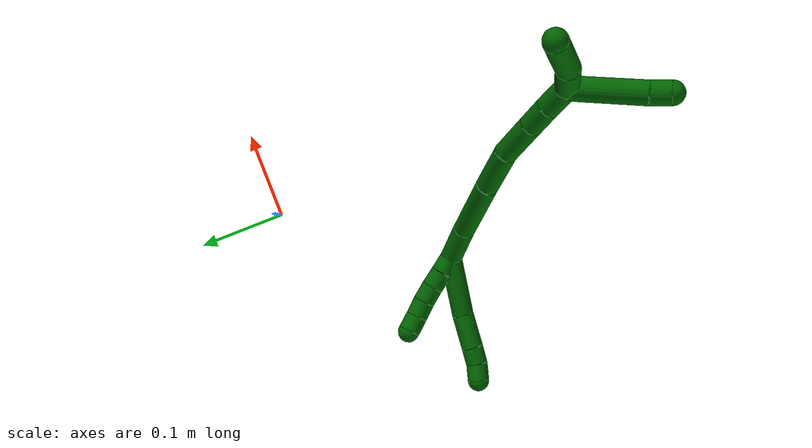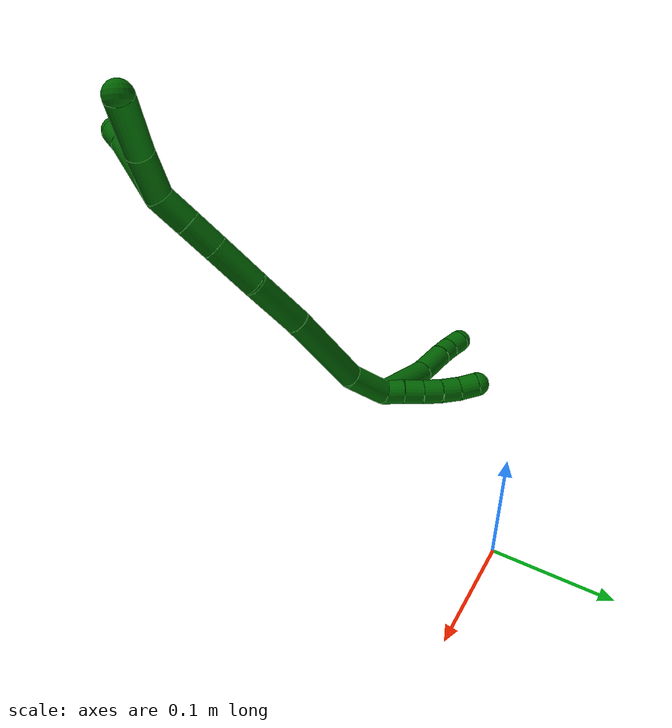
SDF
<sdf version="1.7">
 <world name="default">
  <model name="6">
   <static>0</static>
   <link name="6">
    <collision name="collision-cylinder-e_1_2_8">
     <pose>-0.032382 0.012296 0.002668 -1.35716 -1.20019 1.00836</pose>
     <geometry><cylinder><radius>0.0125</radius><length>0.06948</length></cylinder></geometry>
     <surface>
      <friction><ode><mu>1.16</mu><mu2>1.16</mu2><slip1>0</slip1><slip2>0</slip2></ode></friction>
      <contact><ode><kp>1e+06</kp><kd>1</kd><max_vel>0</max_vel><min_depth>0.001</min_depth></ode></contact>
     </surface>
    </collision>
    <visual name="visual-cylinder-e_1_2_8">
     <pose>-0.032382 0.012296 0.002668 -1.35716 -1.20019 1.00836</pose>
     <geometry><cylinder><radius>0.0125</radius><length>0.06948</length></cylinder></geometry>
     <material><ambient>0 0.392157 0.003922 1</ambient></material>
    </visual>
    <collision name="collision-cylinder-e_2_8_9">
     <pose>-0.08309 0.031248 0.010634 -0.898435 -1.13621 0.597046</pose>
     <geometry><cylinder><radius>0.0125</radius><length>0.04041</length></cylinder></geometry>
     <surface>
      <friction><ode><mu>1.16</mu><mu2>1.16</mu2><slip1>0</slip1><slip2>0</slip2></ode></friction>
      <contact><ode><kp>1e+06</kp><kd>1</kd><max_vel>0</max_vel><min_depth>0.001</min_depth></ode></contact>
     </surface>
    </collision>
    <visual name="visual-cylinder-e_2_8_9">
     <pose>-0.08309 0.031248 0.010634 -0.898435 -1.13621 0.597046</pose>
     <geometry><cylinder><radius>0.0125</radius><length>0.04041</length></cylinder></geometry>
     <material><ambient>0 0.392157 0.003922 1</ambient></material>
    </visual>
    <collision name="collision-cylinder-e_3_9_10">
     <pose>-0.110658 0.041187 0.01805 -0.997867 -1.17073 0.693246</pose>
     <geometry><cylinder><radius>0.0125</radius><length>0.020065</length></cylinder></geometry>
     <surface>
      <friction><ode><mu>1.16</mu><mu2>1.16</mu2><slip1>0</slip1><slip2>0</slip2></ode></friction>
      <contact><ode><kp>1e+06</kp><kd>1</kd><max_vel>0</max_vel><min_depth>0.001</min_depth></ode></contact>
     </surface>
    </collision>
    <visual name="visual-cylinder-e_3_9_10">
     <pose>-0.110658 0.041187 0.01805 -0.997867 -1.17073 0.693246</pose>
     <geometry><cylinder><radius>0.0125</radius><length>0.020065</length></cylinder></geometry>
     <material><ambient>0 0.392157 0.003922 1</ambient></material>
    </visual>
    <collision name="collision-cylinder-e_4_10_6">
     <pose>-0.128069 0.049566 0.022944 -1.07214 -0.953338 0.595335</pose>
     <geometry><cylinder><radius>0.0125</radius><length>0.020044</length></cylinder></geometry>
     <surface>
      <friction><ode><mu>1.16</mu><mu2>1.16</mu2><slip1>0</slip1><slip2>0</slip2></ode></friction>
      <contact><ode><kp>1e+06</kp><kd>1</kd><max_vel>0</max_vel><min_depth>0.001</min_depth></ode></contact>
     </surface>
    </collision>
    <visual name="visual-cylinder-e_4_10_6">
     <pose>-0.128069 0.049566 0.022944 -1.07214 -0.953338 0.595335</pose>
     <geometry><cylinder><radius>0.0125</radius><length>0.020044</length></cylinder></geometry>
     <material><ambient>0 0.392157 0.003922 1</ambient></material>
    </visual>
    <collision name="collision-cylinder-e_1_2_11">
     <pose>-0.004279 0.009023 -0.000527 -1.62919 -0.442218 0.46789</pose>
     <geometry><cylinder><radius>0.0125</radius><length>0.02</length></cylinder></geometry>
     <surface>
      <friction><ode><mu>1.16</mu><mu2>1.16</mu2><slip1>0</slip1><slip2>0</slip2></ode></friction>
      <contact><ode><kp>1e+06</kp><kd>1</kd><max_vel>0</max_vel><min_depth>0.001</min_depth></ode></contact>
     </surface>
    </collision>
    <visual name="visual-cylinder-e_1_2_11">
     <pose>-0.004279 0.009023 -0.000527 -1.62919 -0.442218 0.46789</pose>
     <geometry><cylinder><radius>0.0125</radius><length>0.02</length></cylinder></geometry>
     <material><ambient>0 0.392157 0.003922 1</ambient></material>
    </visual>
    <collision name="collision-cylinder-e_2_11_12">
     <pose>-0.012861 0.026978 -0.002358 -1.71568 -0.444764 0.511561</pose>
     <geometry><cylinder><radius>0.0125</radius><length>0.02</length></cylinder></geometry>
     <surface>
      <friction><ode><mu>1.16</mu><mu2>1.16</mu2><slip1>0</slip1><slip2>0</slip2></ode></friction>
      <contact><ode><kp>1e+06</kp><kd>1</kd><max_vel>0</max_vel><min_depth>0.001</min_depth></ode></contact>
     </surface>
    </collision>
    <visual name="visual-cylinder-e_2_11_12">
     <pose>-0.012861 0.026978 -0.002358 -1.71568 -0.444764 0.511561</pose>
     <geometry><cylinder><radius>0.0125</radius><length>0.02</length></cylinder></geometry>
     <material><ambient>0 0.392157 0.003922 1</ambient></material>
    </visual>
    <collision name="collision-cylinder-e_3_12_13">
     <pose>-0.021786 0.044753 -0.004324 -1.64555 -0.480525 0.516275</pose>
     <geometry><cylinder><radius>0.0125</radius><length>0.02</length></cylinder></geometry>
     <surface>
      <friction><ode><mu>1.16</mu><mu2>1.16</mu2><slip1>0</slip1><slip2>0</slip2></ode></friction>
      <contact><ode><kp>1e+06</kp><kd>1</kd><max_vel>0</max_vel><min_depth>0.001</min_depth></ode></contact>
     </surface>
    </collision>
    <visual name="visual-cylinder-e_3_12_13">
     <pose>-0.021786 0.044753 -0.004324 -1.64555 -0.480525 0.516275</pose>
     <geometry><cylinder><radius>0.0125</radius><length>0.02</length></cylinder></geometry>
     <material><ambient>0 0.392157 0.003922 1</ambient></material>
    </visual>
    <collision name="collision-cylinder-e_4_13_14">
     <pose>-0.031469 0.062221 -0.004908 -1.56172 -0.530616 0.526042</pose>
     <geometry><cylinder><radius>0.0125</radius><length>0.02</length></cylinder></geometry>
     <surface>
      <friction><ode><mu>1.16</mu><mu2>1.16</mu2><slip1>0</slip1><slip2>0</slip2></ode></friction>
      <contact><ode><kp>1e+06</kp><kd>1</kd><max_vel>0</max_vel><min_depth>0.001</min_depth></ode></contact>
     </surface>
    </collision>
    <visual name="visual-cylinder-e_4_13_14">
     <pose>-0.031469 0.062221 -0.004908 -1.56172 -0.530616 0.526042</pose>
     <geometry><cylinder><radius>0.0125</radius><length>0.02</length></cylinder></geometry>
     <material><ambient>0 0.392157 0.003922 1</ambient></material>
    </visual>
    <collision name="collision-cylinder-e_5_14_5">
     <pose>-0.040599 0.07984 -0.003236 -1.39548 -0.419102 0.352916</pose>
     <geometry><cylinder><radius>0.0125</radius><length>0.02</length></cylinder></geometry>
     <surface>
      <friction><ode><mu>1.16</mu><mu2>1.16</mu2><slip1>0</slip1><slip2>0</slip2></ode></friction>
      <contact><ode><kp>1e+06</kp><kd>1</kd><max_vel>0</max_vel><min_depth>0.001</min_depth></ode></contact>
     </surface>
    </collision>
    <visual name="visual-cylinder-e_5_14_5">
     <pose>-0.040599 0.07984 -0.003236 -1.39548 -0.419102 0.352916</pose>
     <geometry><cylinder><radius>0.0125</radius><length>0.02</length></cylinder></geometry>
     <material><ambient>0 0.392157 0.003922 1</ambient></material>
    </visual>
    <collision name="collision-cylinder-e_1_2_15">
     <pose>0.014149 -0.012551 0.012019 0.807025 0.683356 0.30136</pose>
     <geometry><cylinder><radius>0.0125</radius><length>0.044819</length></cylinder></geometry>
     <surface>
      <friction><ode><mu>1.16</mu><mu2>1.16</mu2><slip1>0</slip1><slip2>0</slip2></ode></friction>
      <contact><ode><kp>1e+06</kp><kd>1</kd><max_vel>0</max_vel><min_depth>0.001</min_depth></ode></contact>
     </surface>
    </collision>
    <visual name="visual-cylinder-e_1_2_15">
     <pose>0.014149 -0.012551 0.012019 0.807025 0.683356 0.30136</pose>
     <geometry><cylinder><radius>0.0125</radius><length>0.044819</length></cylinder></geometry>
     <material><ambient>0 0.392157 0.003922 1</ambient></material>
    </visual>
    <collision name="collision-cylinder-e_2_15_16">
     <pose>0.053517 -0.040694 0.056557 0.447113 0.610249 0.142972</pose>
     <geometry><cylinder><radius>0.0125</radius><length>0.088013</length></cylinder></geometry>
     <surface>
      <friction><ode><mu>1.16</mu><mu2>1.16</mu2><slip1>0</slip1><slip2>0</slip2></ode></friction>
      <contact><ode><kp>1e+06</kp><kd>1</kd><max_vel>0</max_vel><min_depth>0.001</min_depth></ode></contact>
     </surface>
    </collision>
    <visual name="visual-cylinder-e_2_15_16">
     <pose>0.053517 -0.040694 0.056557 0.447113 0.610249 0.142972</pose>
     <geometry><cylinder><radius>0.0125</radius><length>0.088013</length></cylinder></geometry>
     <material><ambient>0 0.392157 0.003922 1</ambient></material>
    </visual>
    <collision name="collision-cylinder-e_3_16_17">
     <pose>0.094829 -0.068112 0.109113 0.533144 0.60512 0.170064</pose>
     <geometry><cylinder><radius>0.0125</radius><length>0.056581</length></cylinder></geometry>
     <surface>
      <friction><ode><mu>1.16</mu><mu2>1.16</mu2><slip1>0</slip1><slip2>0</slip2></ode></friction>
      <contact><ode><kp>1e+06</kp><kd>1</kd><max_vel>0</max_vel><min_depth>0.001</min_depth></ode></contact>
     </surface>
    </collision>
    <visual name="visual-cylinder-e_3_16_17">
     <pose>0.094829 -0.068112 0.109113 0.533144 0.60512 0.170064</pose>
     <geometry><cylinder><radius>0.0125</radius><length>0.056581</length></cylinder></geometry>
     <material><ambient>0 0.392157 0.003922 1</ambient></material>
    </visual>
    <collision name="collision-cylinder-e_4_17_18">
     <pose>0.121082 -0.092588 0.146917 0.618815 0.43592 0.141366</pose>
     <geometry><cylinder><radius>0.0125</radius><length>0.048121</length></cylinder></geometry>
     <surface>
      <friction><ode><mu>1.16</mu><mu2>1.16</mu2><slip1>0</slip1><slip2>0</slip2></ode></friction>
      <contact><ode><kp>1e+06</kp><kd>1</kd><max_vel>0</max_vel><min_depth>0.001</min_depth></ode></contact>
     </surface>
    </collision>
    <visual name="visual-cylinder-e_4_17_18">
     <pose>0.121082 -0.092588 0.146917 0.618815 0.43592 0.141366</pose>
     <geometry><cylinder><radius>0.0125</radius><length>0.048121</length></cylinder></geometry>
     <material><ambient>0 0.392157 0.003922 1</ambient></material>
    </visual>
    <collision name="collision-cylinder-e_5_18_19">
     <pose>0.137657 -0.113382 0.175945 0.625987 0.432466 0.141944</pose>
     <geometry><cylinder><radius>0.0125</radius><length>0.030613</length></cylinder></geometry>
     <surface>
      <friction><ode><mu>1.16</mu><mu2>1.16</mu2><slip1>0</slip1><slip2>0</slip2></ode></friction>
      <contact><ode><kp>1e+06</kp><kd>1</kd><max_vel>0</max_vel><min_depth>0.001</min_depth></ode></contact>
     </surface>
    </collision>
    <visual name="visual-cylinder-e_5_18_19">
     <pose>0.137657 -0.113382 0.175945 0.625987 0.432466 0.141944</pose>
     <geometry><cylinder><radius>0.0125</radius><length>0.030613</length></cylinder></geometry>
     <material><ambient>0 0.392157 0.003922 1</ambient></material>
    </visual>
    <collision name="collision-cylinder-e_6_19_1">
     <pose>0.150355 -0.130306 0.198915 0.643504 0.405565 0.136859</pose>
     <geometry><cylinder><radius>0.0125</radius><length>0.031854</length></cylinder></geometry>
     <surface>
      <friction><ode><mu>1.16</mu><mu2>1.16</mu2><slip1>0</slip1><slip2>0</slip2></ode></friction>
      <contact><ode><kp>1e+06</kp><kd>1</kd><max_vel>0</max_vel><min_depth>0.001</min_depth></ode></contact>
     </surface>
    </collision>
    <visual name="visual-cylinder-e_6_19_1">
     <pose>0.150355 -0.130306 0.198915 0.643504 0.405565 0.136859</pose>
     <geometry><cylinder><radius>0.0125</radius><length>0.031854</length></cylinder></geometry>
     <material><ambient>0 0.392157 0.003922 1</ambient></material>
    </visual>
    <collision name="collision-cylinder-e_1_1_20">
     <pose>0.138978 -0.164559 0.235651 0.7942 -0.459298 -0.195455</pose>
     <geometry><cylinder><radius>0.0125</radius><length>0.079678</length></cylinder></geometry>
     <surface>
      <friction><ode><mu>1.16</mu><mu2>1.16</mu2><slip1>0</slip1><slip2>0</slip2></ode></friction>
      <contact><ode><kp>1e+06</kp><kd>1</kd><max_vel>0</max_vel><min_depth>0.001</min_depth></ode></contact>
     </surface>
    </collision>
    <visual name="visual-cylinder-e_1_1_20">
     <pose>0.138978 -0.164559 0.235651 0.7942 -0.459298 -0.195455</pose>
     <geometry><cylinder><radius>0.0125</radius><length>0.079678</length></cylinder></geometry>
     <material><ambient>0 0.392157 0.003922 1</ambient></material>
    </visual>
    <collision name="collision-cylinder-e_2_20_4">
     <pose>0.11708 -0.197276 0.266407 0.901701 -0.430034 -0.210667</pose>
     <geometry><cylinder><radius>0.0125</radius><length>0.020322</length></cylinder></geometry>
     <surface>
      <friction><ode><mu>1.16</mu><mu2>1.16</mu2><slip1>0</slip1><slip2>0</slip2></ode></friction>
      <contact><ode><kp>1e+06</kp><kd>1</kd><max_vel>0</max_vel><min_depth>0.001</min_depth></ode></contact>
     </surface>
    </collision>
    <visual name="visual-cylinder-e_2_20_4">
     <pose>0.11708 -0.197276 0.266407 0.901701 -0.430034 -0.210667</pose>
     <geometry><cylinder><radius>0.0125</radius><length>0.020322</length></cylinder></geometry>
     <material><ambient>0 0.392157 0.003922 1</ambient></material>
    </visual>
    <collision name="collision-cylinder-e_1_1_21">
     <pose>0.169848 -0.137127 0.228158 -0.111299 0.642631 -0.03708</pose>
     <geometry><cylinder><radius>0.0125</radius><length>0.044081</length></cylinder></geometry>
     <surface>
      <friction><ode><mu>1.16</mu><mu2>1.16</mu2><slip1>0</slip1><slip2>0</slip2></ode></friction>
      <contact><ode><kp>1e+06</kp><kd>1</kd><max_vel>0</max_vel><min_depth>0.001</min_depth></ode></contact>
     </surface>
    </collision>
    <visual name="visual-cylinder-e_1_1_21">
     <pose>0.169848 -0.137127 0.228158 -0.111299 0.642631 -0.03708</pose>
     <geometry><cylinder><radius>0.0125</radius><length>0.044081</length></cylinder></geometry>
     <material><ambient>0 0.392157 0.003922 1</ambient></material>
    </visual>
    <collision name="collision-cylinder-e_2_21_3">
     <pose>0.202546 -0.12798 0.264408 -0.366684 0.771268 -0.150267</pose>
     <geometry><cylinder><radius>0.0125</radius><length>0.055919</length></cylinder></geometry>
     <surface>
      <friction><ode><mu>1.16</mu><mu2>1.16</mu2><slip1>0</slip1><slip2>0</slip2></ode></friction>
      <contact><ode><kp>1e+06</kp><kd>1</kd><max_vel>0</max_vel><min_depth>0.001</min_depth></ode></contact>
     </surface>
    </collision>
    <visual name="visual-cylinder-e_2_21_3">
     <pose>0.202546 -0.12798 0.264408 -0.366684 0.771268 -0.150267</pose>
     <geometry><cylinder><radius>0.0125</radius><length>0.055919</length></cylinder></geometry>
     <material><ambient>0 0.392157 0.003922 1</ambient></material>
    </visual>
    <collision name="collision-sphere-3">
     <pose>0.222035 -0.120792 0.283122 0 -0 0</pose>
     <geometry><sphere><radius>0.0125</radius></sphere></geometry>
     <surface>
      <friction><ode><mu>1.16</mu><mu2>1.16</mu2><slip1>0</slip1><slip2>0</slip2></ode></friction>
      <contact><ode><kp>1e+06</kp><kd>1</kd><max_vel>0</max_vel><min_depth>0.001</min_depth></ode></contact>
     </surface>
    </collision>
    <visual name="visual-sphere-3">
     <pose>0.222035 -0.120792 0.283122 0 -0 0</pose>
     <geometry><sphere><radius>0.0125</radius></sphere></geometry>
     <material><ambient>0 0.392157 0.003922 1</ambient></material>
    </visual>
    <collision name="collision-sphere-21">
     <pose>0.183057 -0.135167 0.245693 0 -0 0</pose>
     <geometry><sphere><radius>0.0125</radius></sphere></geometry>
     <surface>
      <friction><ode><mu>1.16</mu><mu2>1.16</mu2><slip1>0</slip1><slip2>0</slip2></ode></friction>
      <contact><ode><kp>1e+06</kp><kd>1</kd><max_vel>0</max_vel><min_depth>0.001</min_depth></ode></contact>
     </surface>
    </collision>
    <visual name="visual-sphere-21">
     <pose>0.183057 -0.135167 0.245693 0 -0 0</pose>
     <geometry><sphere><radius>0.0125</radius></sphere></geometry>
     <material><ambient>0 0.392157 0.003922 1</ambient></material>
    </visual>
    <collision name="collision-sphere-4">
     <pose>0.112844 -0.20452 0.272136 0 -0 0</pose>
     <geometry><sphere><radius>0.0125</radius></sphere></geometry>
     <surface>
      <friction><ode><mu>1.16</mu><mu2>1.16</mu2><slip1>0</slip1><slip2>0</slip2></ode></friction>
      <contact><ode><kp>1e+06</kp><kd>1</kd><max_vel>0</max_vel><min_depth>0.001</min_depth></ode></contact>
     </surface>
    </collision>
    <visual name="visual-sphere-4">
     <pose>0.112844 -0.20452 0.272136 0 -0 0</pose>
     <geometry><sphere><radius>0.0125</radius></sphere></geometry>
     <material><ambient>0 0.392157 0.003922 1</ambient></material>
    </visual>
    <collision name="collision-sphere-20">
     <pose>0.121317 -0.190031 0.260678 0 -0 0</pose>
     <geometry><sphere><radius>0.0125</radius></sphere></geometry>
     <surface>
      <friction><ode><mu>1.16</mu><mu2>1.16</mu2><slip1>0</slip1><slip2>0</slip2></ode></friction>
      <contact><ode><kp>1e+06</kp><kd>1</kd><max_vel>0</max_vel><min_depth>0.001</min_depth></ode></contact>
     </surface>
    </collision>
    <visual name="visual-sphere-20">
     <pose>0.121317 -0.190031 0.260678 0 -0 0</pose>
     <geometry><sphere><radius>0.0125</radius></sphere></geometry>
     <material><ambient>0 0.392157 0.003922 1</ambient></material>
    </visual>
    <collision name="collision-sphere-11">
     <pose>-0.008559 0.018045 -0.001055 0 -0 0</pose>
     <geometry><sphere><radius>0.0125</radius></sphere></geometry>
     <surface>
      <friction><ode><mu>1.16</mu><mu2>1.16</mu2><slip1>0</slip1><slip2>0</slip2></ode></friction>
      <contact><ode><kp>1e+06</kp><kd>1</kd><max_vel>0</max_vel><min_depth>0.001</min_depth></ode></contact>
     </surface>
    </collision>
    <visual name="visual-sphere-11">
     <pose>-0.008559 0.018045 -0.001055 0 -0 0</pose>
     <geometry><sphere><radius>0.0125</radius></sphere></geometry>
     <material><ambient>0 0.392157 0.003922 1</ambient></material>
    </visual>
    <collision name="collision-sphere-6">
     <pose>-0.136241 0.054662 0.025719 0 -0 0</pose>
     <geometry><sphere><radius>0.0125</radius></sphere></geometry>
     <surface>
      <friction><ode><mu>1.16</mu><mu2>1.16</mu2><slip1>0</slip1><slip2>0</slip2></ode></friction>
      <contact><ode><kp>1e+06</kp><kd>1</kd><max_vel>0</max_vel><min_depth>0.001</min_depth></ode></contact>
     </surface>
    </collision>
    <visual name="visual-sphere-6">
     <pose>-0.136241 0.054662 0.025719 0 -0 0</pose>
     <geometry><sphere><radius>0.0125</radius></sphere></geometry>
     <material><ambient>0 0.392157 0.003922 1</ambient></material>
    </visual>
    <collision name="collision-sphere-10">
     <pose>-0.119898 0.04447 0.020169 0 -0 0</pose>
     <geometry><sphere><radius>0.0125</radius></sphere></geometry>
     <surface>
      <friction><ode><mu>1.16</mu><mu2>1.16</mu2><slip1>0</slip1><slip2>0</slip2></ode></friction>
      <contact><ode><kp>1e+06</kp><kd>1</kd><max_vel>0</max_vel><min_depth>0.001</min_depth></ode></contact>
     </surface>
    </collision>
    <visual name="visual-sphere-10">
     <pose>-0.119898 0.04447 0.020169 0 -0 0</pose>
     <geometry><sphere><radius>0.0125</radius></sphere></geometry>
     <material><ambient>0 0.392157 0.003922 1</ambient></material>
    </visual>
    <collision name="collision-sphere-9">
     <pose>-0.101417 0.037903 0.015932 0 -0 0</pose>
     <geometry><sphere><radius>0.0125</radius></sphere></geometry>
     <surface>
      <friction><ode><mu>1.16</mu><mu2>1.16</mu2><slip1>0</slip1><slip2>0</slip2></ode></friction>
      <contact><ode><kp>1e+06</kp><kd>1</kd><max_vel>0</max_vel><min_depth>0.001</min_depth></ode></contact>
     </surface>
    </collision>
    <visual name="visual-sphere-9">
     <pose>-0.101417 0.037903 0.015932 0 -0 0</pose>
     <geometry><sphere><radius>0.0125</radius></sphere></geometry>
     <material><ambient>0 0.392157 0.003922 1</ambient></material>
    </visual>
    <collision name="collision-sphere-2">
     <geometry><sphere><radius>0.0125</radius></sphere></geometry>
     <surface>
      <friction><ode><mu>1.16</mu><mu2>1.16</mu2><slip1>0</slip1><slip2>0</slip2></ode></friction>
      <contact><ode><kp>1e+06</kp><kd>1</kd><max_vel>0</max_vel><min_depth>0.001</min_depth></ode></contact>
     </surface>
    </collision>
    <visual name="visual-sphere-2">
     <geometry><sphere><radius>0.0125</radius></sphere></geometry>
     <material><ambient>0 0.392157 0.003922 1</ambient></material>
    </visual>
    <collision name="collision-sphere-19">
     <pose>0.144072 -0.121525 0.187207 0 -0 0</pose>
     <geometry><sphere><radius>0.0125</radius></sphere></geometry>
     <surface>
      <friction><ode><mu>1.16</mu><mu2>1.16</mu2><slip1>0</slip1><slip2>0</slip2></ode></friction>
      <contact><ode><kp>1e+06</kp><kd>1</kd><max_vel>0</max_vel><min_depth>0.001</min_depth></ode></contact>
     </surface>
    </collision>
    <visual name="visual-sphere-19">
     <pose>0.144072 -0.121525 0.187207 0 -0 0</pose>
     <geometry><sphere><radius>0.0125</radius></sphere></geometry>
     <material><ambient>0 0.392157 0.003922 1</ambient></material>
    </visual>
    <collision name="collision-sphere-8">
     <pose>-0.064763 0.024592 0.005335 0 -0 0</pose>
     <geometry><sphere><radius>0.0125</radius></sphere></geometry>
     <surface>
      <friction><ode><mu>1.16</mu><mu2>1.16</mu2><slip1>0</slip1><slip2>0</slip2></ode></friction>
      <contact><ode><kp>1e+06</kp><kd>1</kd><max_vel>0</max_vel><min_depth>0.001</min_depth></ode></contact>
     </surface>
    </collision>
    <visual name="visual-sphere-8">
     <pose>-0.064763 0.024592 0.005335 0 -0 0</pose>
     <geometry><sphere><radius>0.0125</radius></sphere></geometry>
     <material><ambient>0 0.392157 0.003922 1</ambient></material>
    </visual>
    <collision name="collision-sphere-12">
     <pose>-0.017164 0.03591 -0.003662 0 -0 0</pose>
     <geometry><sphere><radius>0.0125</radius></sphere></geometry>
     <surface>
      <friction><ode><mu>1.16</mu><mu2>1.16</mu2><slip1>0</slip1><slip2>0</slip2></ode></friction>
      <contact><ode><kp>1e+06</kp><kd>1</kd><max_vel>0</max_vel><min_depth>0.001</min_depth></ode></contact>
     </surface>
    </collision>
    <visual name="visual-sphere-12">
     <pose>-0.017164 0.03591 -0.003662 0 -0 0</pose>
     <geometry><sphere><radius>0.0125</radius></sphere></geometry>
     <material><ambient>0 0.392157 0.003922 1</ambient></material>
    </visual>
    <collision name="collision-sphere-13">
     <pose>-0.026409 0.053596 -0.004986 0 -0 0</pose>
     <geometry><sphere><radius>0.0125</radius></sphere></geometry>
     <surface>
      <friction><ode><mu>1.16</mu><mu2>1.16</mu2><slip1>0</slip1><slip2>0</slip2></ode></friction>
      <contact><ode><kp>1e+06</kp><kd>1</kd><max_vel>0</max_vel><min_depth>0.001</min_depth></ode></contact>
     </surface>
    </collision>
    <visual name="visual-sphere-13">
     <pose>-0.026409 0.053596 -0.004986 0 -0 0</pose>
     <geometry><sphere><radius>0.0125</radius></sphere></geometry>
     <material><ambient>0 0.392157 0.003922 1</ambient></material>
    </visual>
    <collision name="collision-sphere-14">
     <pose>-0.03653 0.070845 -0.004829 0 -0 0</pose>
     <geometry><sphere><radius>0.0125</radius></sphere></geometry>
     <surface>
      <friction><ode><mu>1.16</mu><mu2>1.16</mu2><slip1>0</slip1><slip2>0</slip2></ode></friction>
      <contact><ode><kp>1e+06</kp><kd>1</kd><max_vel>0</max_vel><min_depth>0.001</min_depth></ode></contact>
     </surface>
    </collision>
    <visual name="visual-sphere-14">
     <pose>-0.03653 0.070845 -0.004829 0 -0 0</pose>
     <geometry><sphere><radius>0.0125</radius></sphere></geometry>
     <material><ambient>0 0.392157 0.003922 1</ambient></material>
    </visual>
    <collision name="collision-sphere-5">
     <pose>-0.044669 0.088834 -0.001643 0 -0 0</pose>
     <geometry><sphere><radius>0.0125</radius></sphere></geometry>
     <surface>
      <friction><ode><mu>1.16</mu><mu2>1.16</mu2><slip1>0</slip1><slip2>0</slip2></ode></friction>
      <contact><ode><kp>1e+06</kp><kd>1</kd><max_vel>0</max_vel><min_depth>0.001</min_depth></ode></contact>
     </surface>
    </collision>
    <visual name="visual-sphere-5">
     <pose>-0.044669 0.088834 -0.001643 0 -0 0</pose>
     <geometry><sphere><radius>0.0125</radius></sphere></geometry>
     <material><ambient>0 0.392157 0.003922 1</ambient></material>
    </visual>
    <collision name="collision-sphere-15">
     <pose>0.028298 -0.025101 0.024038 0 -0 0</pose>
     <geometry><sphere><radius>0.0125</radius></sphere></geometry>
     <surface>
      <friction><ode><mu>1.16</mu><mu2>1.16</mu2><slip1>0</slip1><slip2>0</slip2></ode></friction>
      <contact><ode><kp>1e+06</kp><kd>1</kd><max_vel>0</max_vel><min_depth>0.001</min_depth></ode></contact>
     </surface>
    </collision>
    <visual name="visual-sphere-15">
     <pose>0.028298 -0.025101 0.024038 0 -0 0</pose>
     <geometry><sphere><radius>0.0125</radius></sphere></geometry>
     <material><ambient>0 0.392157 0.003922 1</ambient></material>
    </visual>
    <collision name="collision-sphere-16">
     <pose>0.078736 -0.056286 0.089075 0 -0 0</pose>
     <geometry><sphere><radius>0.0125</radius></sphere></geometry>
     <surface>
      <friction><ode><mu>1.16</mu><mu2>1.16</mu2><slip1>0</slip1><slip2>0</slip2></ode></friction>
      <contact><ode><kp>1e+06</kp><kd>1</kd><max_vel>0</max_vel><min_depth>0.001</min_depth></ode></contact>
     </surface>
    </collision>
    <visual name="visual-sphere-16">
     <pose>0.078736 -0.056286 0.089075 0 -0 0</pose>
     <geometry><sphere><radius>0.0125</radius></sphere></geometry>
     <material><ambient>0 0.392157 0.003922 1</ambient></material>
    </visual>
    <collision name="collision-sphere-17">
     <pose>0.110923 -0.079937 0.129151 0 -0 0</pose>
     <geometry><sphere><radius>0.0125</radius></sphere></geometry>
     <surface>
      <friction><ode><mu>1.16</mu><mu2>1.16</mu2><slip1>0</slip1><slip2>0</slip2></ode></friction>
      <contact><ode><kp>1e+06</kp><kd>1</kd><max_vel>0</max_vel><min_depth>0.001</min_depth></ode></contact>
     </surface>
    </collision>
    <visual name="visual-sphere-17">
     <pose>0.110923 -0.079937 0.129151 0 -0 0</pose>
     <geometry><sphere><radius>0.0125</radius></sphere></geometry>
     <material><ambient>0 0.392157 0.003922 1</ambient></material>
    </visual>
    <collision name="collision-sphere-18">
     <pose>0.131241 -0.10524 0.164683 0 -0 0</pose>
     <geometry><sphere><radius>0.0125</radius></sphere></geometry>
     <surface>
      <friction><ode><mu>1.16</mu><mu2>1.16</mu2><slip1>0</slip1><slip2>0</slip2></ode></friction>
      <contact><ode><kp>1e+06</kp><kd>1</kd><max_vel>0</max_vel><min_depth>0.001</min_depth></ode></contact>
     </surface>
    </collision>
    <visual name="visual-sphere-18">
     <pose>0.131241 -0.10524 0.164683 0 -0 0</pose>
     <geometry><sphere><radius>0.0125</radius></sphere></geometry>
     <material><ambient>0 0.392157 0.003922 1</ambient></material>
    </visual>
    <collision name="collision-sphere-1">
     <pose>0.156639 -0.139087 0.210623 0 -0 0</pose>
     <geometry><sphere><radius>0.0125</radius></sphere></geometry>
     <surface>
      <friction><ode><mu>1.16</mu><mu2>1.16</mu2><slip1>0</slip1><slip2>0</slip2></ode></friction>
      <contact><ode><kp>1e+06</kp><kd>1</kd><max_vel>0</max_vel><min_depth>0.001</min_depth></ode></contact>
     </surface>
    </collision>
    <visual name="visual-sphere-1">
     <pose>0.156639 -0.139087 0.210623 0 -0 0</pose>
     <geometry><sphere><radius>0.0125</radius></sphere></geometry>
     <material><ambient>0 0.392157 0.003922 1</ambient></material>
    </visual>
    <inertial>
     <pose>0.060255 -0.056005 0.107527 0 -0 0</pose>
     <mass>0.75</mass>
     <inertia><ixx>0.00018</ixx><ixy>0</ixy><ixz>0</ixz><iyy>0.000207</iyy><iyz>0</iyz><izz>6.3e-05</izz></inertia>
    </inertial>
   </link>
   <pose>-0.119856 -0.16791 0.024386 0.190972 -0.337059 0.183143</pose>
  </model>
 </world>
</sdf>
